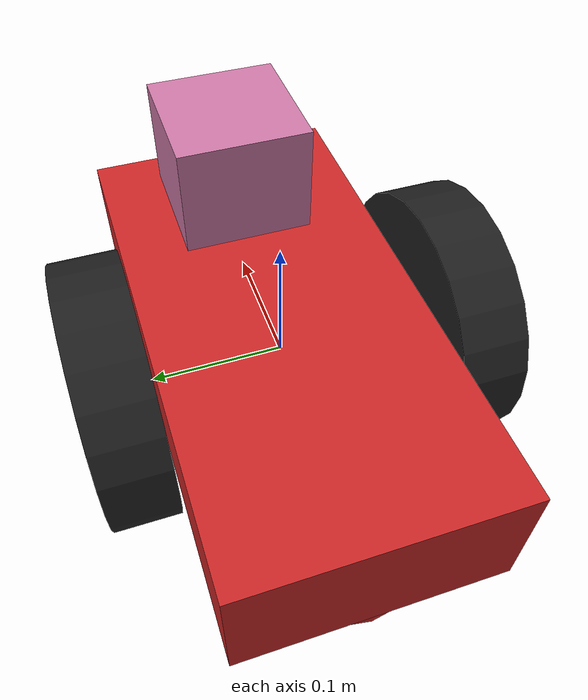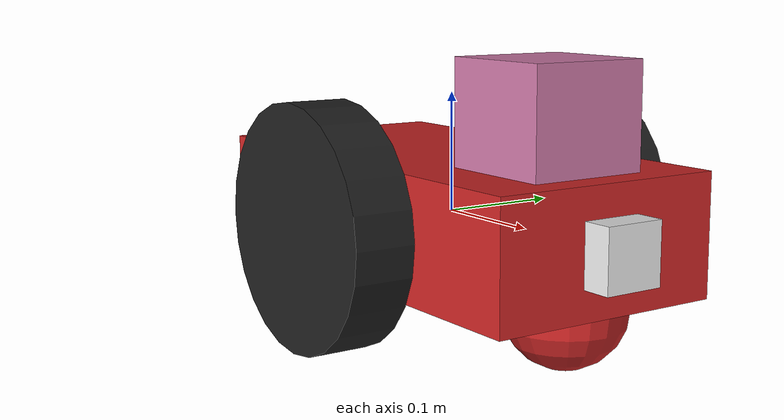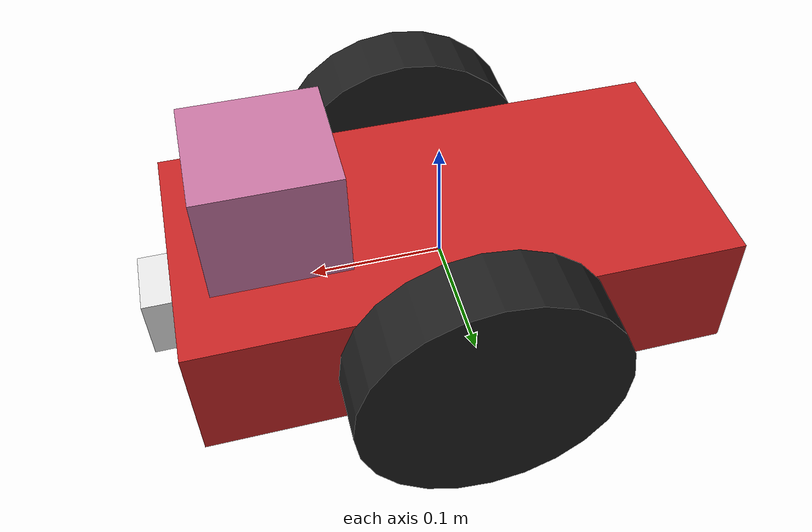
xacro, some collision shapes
<?xml version='1.0'?>

<robot name="my_robot" xmlns:xacro="http://www.ros.org/wiki/xacro">
  <xacro:include filename="$(find my_robot)/urdf/my_robot.gazebo" />
  <link name="robot_footprint"></link>

  <!-- CHASSIS -->
  <joint name="robot_footprint_joint" type="fixed">
    <origin xyz="0 0 0" rpy="0 0 0" />
    <parent link="robot_footprint"/>
    <child link="chassis" />
  </joint>

  <link name='chassis'>
    <pose>0 0 0.1 0 0 0</pose>

    <inertial>
      <mass value="15.0"/>
      <origin xyz="0.0 0 0" rpy=" 0 0 0"/>
      <inertia
          ixx="0.1" ixy="0" ixz="0"
          iyy="0.1" iyz="0"
          izz="0.1"
      />
    </inertial>

    <collision name='collision'>
      <origin xyz="0 0 0" rpy=" 0 0 0"/>
      <geometry>
        <box size=".4 .2 .1"/>
      </geometry>
    </collision>

    <visual name='chassis_visual'>
      <origin xyz="0 0 0" rpy=" 0 0 0"/>
      <geometry>
        <box size=".4 .2 .1"/>
      </geometry>
    </visual>

    <collision name='back_caster_collision'>
      <origin xyz="-0.15 0 -0.05" rpy=" 0 0 0"/>
      <geometry>
        <sphere radius="0.0499"/>
      </geometry>
    </collision>

    <visual name='back_caster_visual'>
      <origin xyz="-0.15 0 -0.05" rpy=" 0 0 0"/>
      <geometry>
        <sphere radius="0.05"/>
      </geometry>
    </visual>

    <collision name='front_caster_collision'>
      <origin xyz="0.15 0 -0.05" rpy=" 0 0 0"/>
      <geometry>
        <sphere radius="0.0499"/>
      </geometry>
    </collision>

    <visual name='front_caster_visual'>
      <origin xyz="0.15 0 -0.05" rpy=" 0 0 0"/>
      <geometry>
        <sphere radius="0.05"/>
      </geometry>
    </visual>

  </link>

  <gazebo reference="chassis">
      <material>Gazebo/Red</material>
  </gazebo>

  <!-- LEFT WHEEL -->

  <joint type="continuous" name="left_wheel_hinge">
    <origin xyz="0 0.128 0.0" rpy="0 0 0"/>
    <child link="left_wheel"/>
    <parent link="chassis"/>
    <axis xyz="0 1 0" rpy="0 0 0"/>
    <limit effort="10000" velocity="1000"/>
    <dynamics damping="1.0" friction="1.0"/>
  </joint>

  <link name='left_wheel'>

    <inertial>
      <mass value="5.0"/>
      <origin xyz="0.0 0 0" rpy=" 0 1.5707 1.5707"/>
      <inertia
          ixx="0.1" ixy="0" ixz="0"
          iyy="0.1" iyz="0"
          izz="0.1"
      />
    </inertial>

    <collision name='left_wheel_collision'>
      <origin xyz="0 0 0" rpy=" 0 1.5707 1.5707"/>
      <geometry>
        <cylinder radius="0.1" length="0.05"/>
      </geometry>
    </collision>

    <visual name='left_wheel_visual'>
      <origin xyz="0 0 0" rpy=" 0 1.5707 1.5707"/>
      <geometry>
        <cylinder radius="0.1" length="0.05"/>
      </geometry>
    </visual>

  </link>

  <gazebo reference="left_wheel">
      <material>Gazebo/Black</material>
  </gazebo>

  <!-- RIGHT WHEEL -->

  <joint type="continuous" name="right_wheel_hinge">
    <origin xyz="0 -0.128 0.0" rpy="0 0 0"/>
    <child link="right_wheel"/>
    <parent link="chassis"/>
    <axis xyz="0 1 0" rpy="0 0 0"/>
    <limit effort="10000" velocity="1000"/>
    <dynamics damping="1.0" friction="1.0"/>
  </joint>

  <link name='right_wheel'>

    <inertial>
      <mass value="5.0"/>
      <origin xyz="0.0 0 0" rpy=" 0 1.5707 1.5707"/>
      <inertia
          ixx="0.1" ixy="0" ixz="0"
          iyy="0.1" iyz="0"
          izz="0.1"
      />
    </inertial>

    <collision name='right_wheel_collision'>
      <origin xyz="0 0 0" rpy=" 0 1.5707 1.5707"/>
      <geometry>
        <cylinder radius="0.1" length="0.05"/>
      </geometry>
    </collision>

    <visual name='right_wheel_visual'>
      <origin xyz="0 0 0" rpy=" 0 1.5707 1.5707"/>
      <geometry>
        <cylinder radius="0.1" length="0.05"/>
      </geometry>
    </visual>

  </link>

  <gazebo reference="right_wheel">
      <material>Gazebo/Black</material>
  </gazebo>

  <!-- CAMERA -->

  <link name="camera">
    <origin xyz="0 0 0" rpy="0 0 0" />

    <inertial>
      <mass value="0.1"/>
      <inertia
              ixx="1e-6" ixy="0" ixz="0"
              iyy="1e-6" iyz="0" izz="1e-6"
      />
    </inertial>

    <collision>
      <geometry>
        <box size="0.05 0.05 0.05"/>
      </geometry>
    </collision>

    <visual>
      <geometry>
        <box size="0.05 0.05 0.05"/>
      </geometry>
    </visual>
  </link>

  <joint name="camera_joint" type="fixed">
    <axis xyz="0 1 0"/>
    <origin xyz="0.2 0 0" rpy="0 0 0" />
    <parent link="chassis"/>
    <child link="camera" />
  </joint>
 <!-- Add RGB-D camera -->
  <joint name="camera_optical_joint" type="fixed">
    <origin xyz="0 0 0" rpy="-1.5707 0 -1.5707"/>
    <parent link="camera"/>
    <child link="camera_link_optical"/>
  </joint>

  <link name="camera_link_optical">
  </link>

    <gazebo reference="camera">
      <material>Gazebo/White</material>
  </gazebo>
  <!-- HOKUYO LIDAR -->

  <joint type="fixed" name="hukoyo_joint">
    <origin xyz="0.125 0 0.085" rpy="0 0 0"/>
    <child link="hokuyo"/>
    <parent link="chassis"/>
    <axis xyz="0 1 0" rpy="0 0 0"/>
  </joint>

  <link name='hokuyo'>

    <inertial>
      <mass value="1e-5"/>
      <origin xyz="0 0 0" rpy=" 0 0 0"/>
      <inertia
          ixx="1e-6" ixy="0" ixz="0"
          iyy="1e-6" iyz="0"
          izz="1e-6"
      />
    </inertial>

    <collision name='hokuyo_collision'>
      <origin xyz="0 0 0" rpy=" 0 0 0"/>
      <geometry>
        <box size="0.1 0.1 0.1"/>
      </geometry>
    </collision>

    <visual name='hokuyo_visual'>
      <origin xyz="0 0 0" rpy=" 0 0 0"/>
      <geometry>
        <mesh filename="package://my_robot/meshes/hokuyo.dae"/>

      </geometry>
    </visual>

  </link>

</robot>
